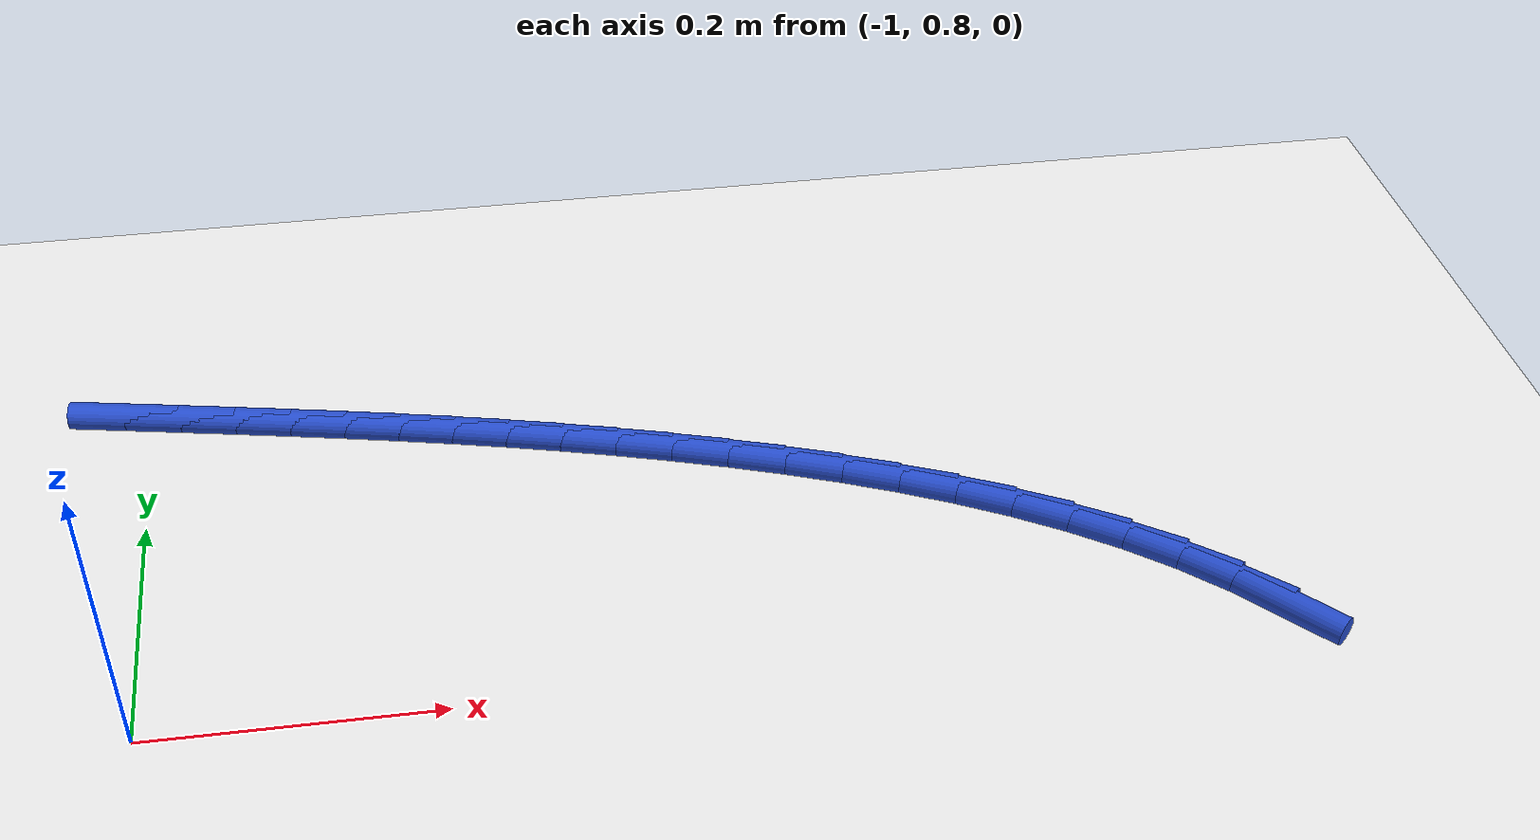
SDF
<sdf version="1.6">
 <world name="default">
  <model name="ground_plane">
   <static>1</static>
   <link name="link">
    <collision name="collision">
     <geometry><plane><normal>0 0 1</normal><size>100 100</size></plane></geometry>
     <surface><friction><ode><mu>100</mu><mu2>50</mu2></ode></friction></surface>
    </collision>
    <visual name="visual">
     <cast_shadows>0</cast_shadows>
     <geometry><plane><normal>0 0 1</normal><size>100 100</size></plane></geometry>
     <material>
      <script><uri>file://media/materials/scripts/gazebo.material</uri><name>Gazebo/WhiteGlow</name></script>
     </material>
    </visual>
   </link>
  </model>
  <model name="line">
   <link name="link_21">
    <pose>-0.24771781639187673 0.8042639394425507 0.01 0 1.57 -0.8416430142504149</pose>
    <collision name="collision">
     <geometry><cylinder><radius>0.01</radius><length>0.08</length></cylinder></geometry>
    </collision>
    <visual name="visual">
     <material>
      <script><name>Gazebo/Blue</name><uri>file://media/materials/scripts/gazebo.material</uri></script>
     </material>
     <geometry><cylinder><radius>0.01</radius><length>0.08</length></cylinder></geometry>
    </visual>
   </link>
   <link name="link_22">
    <pose>-0.273683140991958 0.8333276307336495 0.01 0 1.57 -0.7567832264424561</pose>
    <collision name="collision">
     <geometry><cylinder><radius>0.01</radius><length>0.08</length></cylinder></geometry>
    </collision>
    <visual name="visual">
     <material>
      <script><name>Gazebo/Blue</name><uri>file://media/materials/scripts/gazebo.material</uri></script>
     </material>
     <geometry><cylinder><radius>0.01</radius><length>0.08</length></cylinder></geometry>
    </visual>
   </link>
   <link name="link_23">
    <pose>-0.3021604452552976 0.860220099837204 0.01 0 1.57 -0.6783331806806251</pose>
    <collision name="collision">
     <geometry><cylinder><radius>0.01</radius><length>0.08</length></cylinder></geometry>
    </collision>
    <visual name="visual">
     <material>
      <script><name>Gazebo/Blue</name><uri>file://media/materials/scripts/gazebo.material</uri></script>
     </material>
     <geometry><cylinder><radius>0.01</radius><length>0.08</length></cylinder></geometry>
    </visual>
   </link>
   <link name="link_24">
    <pose>-0.3329332670541112 0.8850201715893977 0.01 0 1.57 -0.6083714480800783</pose>
    <collision name="collision">
     <geometry><cylinder><radius>0.01</radius><length>0.08</length></cylinder></geometry>
    </collision>
    <visual name="visual">
     <material>
      <script><name>Gazebo/Blue</name><uri>file://media/materials/scripts/gazebo.material</uri></script>
     </material>
     <geometry><cylinder><radius>0.01</radius><length>0.08</length></cylinder></geometry>
    </visual>
   </link>
   <link name="link_25">
    <pose>-0.36571592222374666 0.9078532101665094 0.01 0 1.57 -0.5465187247359409</pose>
    <collision name="collision">
     <geometry><cylinder><radius>0.01</radius><length>0.08</length></cylinder></geometry>
    </collision>
    <visual name="visual">
     <material>
      <script><name>Gazebo/Blue</name><uri>file://media/materials/scripts/gazebo.material</uri></script>
     </material>
     <geometry><cylinder><radius>0.01</radius><length>0.08</length></cylinder></geometry>
    </visual>
   </link>
   <link name="link_26">
    <pose>-0.40022272659955194 0.9288445797448175 0.01 0 1.57 -0.4922126759041056</pose>
    <collision name="collision">
     <geometry><cylinder><radius>0.01</radius><length>0.08</length></cylinder></geometry>
    </collision>
    <visual name="visual">
     <material>
      <script><name>Gazebo/Blue</name><uri>file://media/materials/scripts/gazebo.material</uri></script>
     </material>
     <geometry><cylinder><radius>0.01</radius><length>0.08</length></cylinder></geometry>
    </visual>
   </link>
   <link name="link_27">
    <pose>-0.4361679960168748 0.9481196445006006 0.01 0 1.57 -0.4448231258099982</pose>
    <collision name="collision">
     <geometry><cylinder><radius>0.01</radius><length>0.08</length></cylinder></geometry>
    </collision>
    <visual name="visual">
     <material>
      <script><name>Gazebo/Blue</name><uri>file://media/materials/scripts/gazebo.material</uri></script>
     </material>
     <geometry><cylinder><radius>0.01</radius><length>0.08</length></cylinder></geometry>
    </visual>
   </link>
   <link name="link_28">
    <pose>-0.4732660463110633 0.9658037686101374 0.01 0 1.57 -0.4037289561167457</pose>
    <collision name="collision">
     <geometry><cylinder><radius>0.01</radius><length>0.08</length></cylinder></geometry>
    </collision>
    <visual name="visual">
     <material>
      <script><name>Gazebo/Blue</name><uri>file://media/materials/scripts/gazebo.material</uri></script>
     </material>
     <geometry><cylinder><radius>0.01</radius><length>0.08</length></cylinder></geometry>
    </visual>
   </link>
   <link name="link_29">
    <pose>-0.5112311933174651 0.982022316249706 0.01 0 1.57 -0.36836508496423526</pose>
    <collision name="collision">
     <geometry><cylinder><radius>0.01</radius><length>0.08</length></cylinder></geometry>
    </collision>
    <visual name="visual">
     <material>
      <script><name>Gazebo/Blue</name><uri>file://media/materials/scripts/gazebo.material</uri></script>
     </material>
     <geometry><cylinder><radius>0.01</radius><length>0.08</length></cylinder></geometry>
    </visual>
   </link>
   <link name="link_30">
    <pose>-0.549777752871428 0.9969006515955852 0.01 0 1.57 -0.33824931033730843</pose>
    <collision name="collision">
     <geometry><cylinder><radius>0.01</radius><length>0.08</length></cylinder></geometry>
    </collision>
    <visual name="visual">
     <material>
      <script><name>Gazebo/Blue</name><uri>file://media/materials/scripts/gazebo.material</uri></script>
     </material>
     <geometry><cylinder><radius>0.01</radius><length>0.08</length></cylinder></geometry>
    </visual>
   </link>
   <link name="link_31">
    <pose>-0.5886200408083001 1.0105641388240534 0.01 0 1.57 -0.3129974786201981</pose>
    <collision name="collision">
     <geometry><cylinder><radius>0.01</radius><length>0.08</length></cylinder></geometry>
    </collision>
    <visual name="visual">
     <material>
      <script><name>Gazebo/Blue</name><uri>file://media/materials/scripts/gazebo.material</uri></script>
     </material>
     <geometry><cylinder><radius>0.01</radius><length>0.08</length></cylinder></geometry>
    </visual>
   </link>
   <link name="link_32">
    <pose>-0.6274723729634293 1.0231381421113892 0.01 0 1.57 -0.29203549179892146</pose>
    <collision name="collision">
     <geometry><cylinder><radius>0.01</radius><length>0.08</length></cylinder></geometry>
    </collision>
    <visual name="visual">
     <material>
      <script><name>Gazebo/Blue</name><uri>file://media/materials/scripts/gazebo.material</uri></script>
     </material>
     <geometry><cylinder><radius>0.01</radius><length>0.08</length></cylinder></geometry>
    </visual>
   </link>
   <link name="link_33">
    <pose>-0.6660878102384947 1.0347471353747213 0.01 0 1.57 -0.2733091390741443</pose>
    <collision name="collision">
     <geometry><cylinder><radius>0.01</radius><length>0.08</length></cylinder></geometry>
    </collision>
    <visual name="visual">
     <material>
      <script><name>Gazebo/Blue</name><uri>file://media/materials/scripts/gazebo.material</uri></script>
     </material>
     <geometry><cylinder><radius>0.01</radius><length>0.08</length></cylinder></geometry>
    </visual>
   </link>
   <link name="link_34">
    <pose>-0.7044807144597042 1.0455095885270316 0.01 0 1.57 -0.25622118988302034</pose>
    <collision name="collision">
     <geometry><cylinder><radius>0.01</radius><length>0.08</length></cylinder></geometry>
    </collision>
    <visual name="visual">
     <material>
      <script><name>Gazebo/Blue</name><uri>file://media/materials/scripts/gazebo.material</uri></script>
     </material>
     <geometry><cylinder><radius>0.01</radius><length>0.08</length></cylinder></geometry>
    </visual>
   </link>
   <link name="link_35">
    <pose>-0.7427734325652713 1.0555414902690323 0.01 0 1.57 -0.24100829451175523</pose>
    <collision name="collision">
     <geometry><cylinder><radius>0.01</radius><length>0.08</length></cylinder></geometry>
    </collision>
    <visual name="visual">
     <material>
      <script><name>Gazebo/Blue</name><uri>file://media/materials/scripts/gazebo.material</uri></script>
     </material>
     <geometry><cylinder><radius>0.01</radius><length>0.08</length></cylinder></geometry>
    </visual>
   </link>
   <link name="link_36">
    <pose>-0.7810886531599219 1.064958821450841 0.01 0 1.57 -0.22786655160856303</pose>
    <collision name="collision">
     <geometry><cylinder><radius>0.01</radius><length>0.08</length></cylinder></geometry>
    </collision>
    <visual name="visual">
     <material>
      <script><name>Gazebo/Blue</name><uri>file://media/materials/scripts/gazebo.material</uri></script>
     </material>
     <geometry><cylinder><radius>0.01</radius><length>0.08</length></cylinder></geometry>
    </visual>
   </link>
   <link name="link_37">
    <pose>-0.8195490648483821 1.0738775629225774 0.01 0 1.57 -0.2169420798759481</pose>
    <collision name="collision">
     <geometry><cylinder><radius>0.01</radius><length>0.08</length></cylinder></geometry>
    </collision>
    <visual name="visual">
     <material>
      <script><name>Gazebo/Blue</name><uri>file://media/materials/scripts/gazebo.material</uri></script>
     </material>
     <geometry><cylinder><radius>0.01</radius><length>0.08</length></cylinder></geometry>
    </visual>
   </link>
   <link name="link_38">
    <pose>-0.8582773562353774 1.08241369553436 0.01 0 1.57 -0.2083272432043862</pose>
    <collision name="collision">
     <geometry><cylinder><radius>0.01</radius><length>0.08</length></cylinder></geometry>
    </collision>
    <visual name="visual">
     <material>
      <script><name>Gazebo/Blue</name><uri>file://media/materials/scripts/gazebo.material</uri></script>
     </material>
     <geometry><cylinder><radius>0.01</radius><length>0.08</length></cylinder></geometry>
    </visual>
   </link>
   <link name="link_39">
    <pose>-0.8973962159256348 1.090683200136308 0.01 0 1.57 -0.20205992985741272</pose>
    <collision name="collision">
     <geometry><cylinder><radius>0.01</radius><length>0.08</length></cylinder></geometry>
    </collision>
    <visual name="visual">
     <material>
      <script><name>Gazebo/Blue</name><uri>file://media/materials/scripts/gazebo.material</uri></script>
     </material>
     <geometry><cylinder><radius>0.01</radius><length>0.08</length></cylinder></geometry>
    </visual>
   </link>
   <link name="link_40">
    <pose>-0.937028332523879 1.098802057578539 0.01 0 1.57 -0.1981256249751022</pose>
    <collision name="collision">
     <geometry><cylinder><radius>0.01</radius><length>0.08</length></cylinder></geometry>
    </collision>
    <visual name="visual">
     <material>
      <script><name>Gazebo/Blue</name><uri>file://media/materials/scripts/gazebo.material</uri></script>
     </material>
     <geometry><cylinder><radius>0.01</radius><length>0.08</length></cylinder></geometry>
    </visual>
   </link>
   <link name="link_41">
    <pose>-0.977296394634837 1.1068862487111732 0.01 0 1.57 -0.19646051709394793</pose>
    <collision name="collision">
     <geometry><cylinder><radius>0.01</radius><length>0.08</length></cylinder></geometry>
    </collision>
    <visual name="visual">
     <material>
      <script><name>Gazebo/Blue</name><uri>file://media/materials/scripts/gazebo.material</uri></script>
     </material>
     <geometry><cylinder><radius>0.01</radius><length>0.08</length></cylinder></geometry>
    </visual>
   </link>
   <link name="link_42">
    <pose>-1.0183230453723155 1.1150516901670953 0.01 0 1.57 -0.19428167143168013</pose>
    <collision name="collision">
     <geometry><cylinder><radius>0.01</radius><length>0.08</length></cylinder></geometry>
    </collision>
    <visual name="visual">
     <material>
      <script><name>Gazebo/Blue</name><uri>file://media/materials/scripts/gazebo.material</uri></script>
     </material>
     <geometry><cylinder><radius>0.01</radius><length>0.08</length></cylinder></geometry>
    </visual>
   </link>
  </model>
 </world>
</sdf>
